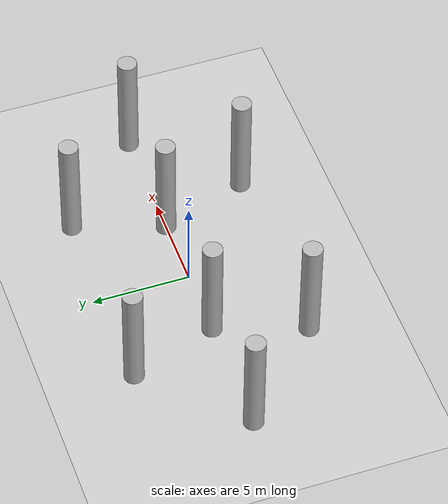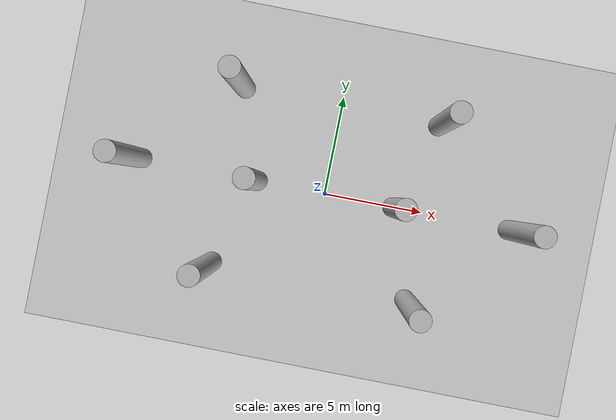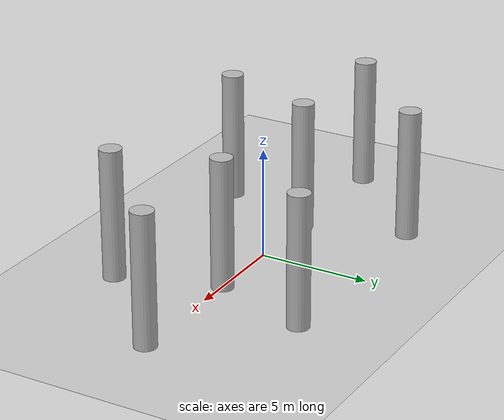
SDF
<?xml version="1.0"?>
<?xml-model href="http://sdformat.org/schemas/root.xsd" schematypens="http://www.w3.org/2001/XMLSchema"?>
<sdf version="1.5">
  <world name="default">
    <!-- coordinate system {-->
    <spherical_coordinates>
      <surface_model>EARTH_WGS84</surface_model>
      <latitude_deg>37.411802</latitude_deg>
      <longitude_deg>-121.995739</longitude_deg>
      <elevation>0.0</elevation>
      <heading_deg>0</heading_deg>
    </spherical_coordinates>

    <!-- physics engine {-->
    <physics name="default_physics" default="0" type="ode">
      <gravity>0 0 -9.8066</gravity>
      <ode>
        <solver>
          <type>quick</type>
          <iters>10</iters>
          <sor>1.3</sor>
          <use_dynamic_moi_rescaling>0</use_dynamic_moi_rescaling>
        </solver>
        <constraints>
          <cfm>0</cfm>
          <erp>0.2</erp>
          <contact_max_correcting_vel>1000</contact_max_correcting_vel>
          <contact_surface_layer>0.001</contact_surface_layer>
        </constraints>
      </ode>
      <max_step_size>0.004</max_step_size>
      <real_time_factor>1</real_time_factor>
      <real_time_update_rate>250</real_time_update_rate>
      <magnetic_field>6.0e-06 2.3e-05 -4.2e-05</magnetic_field>
    </physics>

    <!-- turn off shadows {-->
    <scene>
      <shadows>false</shadows>
      <sky>
        <clouds />
      </sky>
    </scene>

    <!-- sun {-->
    <light type="directional" name="sun">
      <cast_shadows>true</cast_shadows>
      <pose>250 250 600 0 0 0</pose>
      <diffuse>0.8 0.8 0.8 1</diffuse>
      <specular>0.2 0.2 0.2 1</specular>
      <attenuation>
        <range>1000</range>
        <constant>0.9</constant>
        <linear>0.01</linear>
        <quadratic>0.001</quadratic>
      </attenuation>
      <direction>0 0 -1</direction>
    </light>

    <include>
      <uri>model://simple_test_collision</uri>
      <pose> 0 0 0 0 0 0 </pose>
      <name>simple_test_collision</name>
    </include>
    <!-- A ground plane -->
    <include>
      <uri>model://ground_plane</uri>
    </include>

    <gui>
      <camera name="user_camera">
        <pose>0 -14.811049 25.131285 0 0.987643 1.576197</pose>
        <clip>
          <near>0.001</near>
          <far>5000</far>
        </clip>
      </camera>
    </gui>

  </world>
</sdf>

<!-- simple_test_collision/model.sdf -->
<sdf version="1.5">
  <model name="simple_test_collision">
    <static>true</static>
    <link name="link">
      <pose>0 0 0 0 0 0</pose>

      <visual name="visual">
        <cast_shadows>false</cast_shadows>
        <geometry>
          <mesh>
            <uri>model://simple_test_collision/meshes/simple_test_collision.dae</uri>
          </mesh>
        </geometry>
      </visual>

      <collision name="collision">
        <geometry>
          <mesh>
            <uri>model://simple_test_collision/meshes/simple_test_collision.dae</uri>
          </mesh>
        </geometry>
      </collision>

    </link>
  </model>
</sdf>
